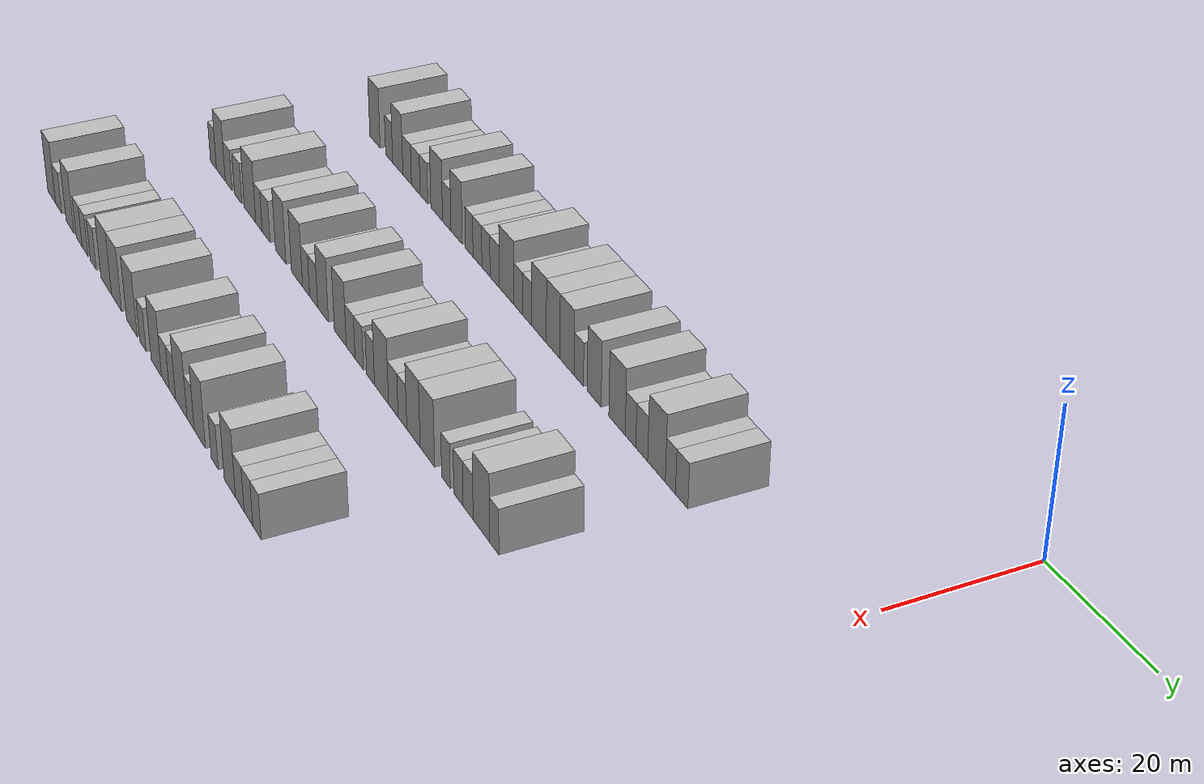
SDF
<sdf version="1.6">
 <world name="default">
  <model name="building_64">
   <static>1</static>
   <pose>25.0000 -115.7345 0 0.000000 0.000000 0.000000</pose>
   <link name="link">
    <pose>0 0 4.50 0 0 0</pose>
    <collision name="collision"><geometry><box><size>10.0000 3.7568 9.0000</size></box></geometry></collision>
    <visual name="visual">
     <cast_shadows>0</cast_shadows>
     <geometry><box><size>10.0000 3.7568 9.0000</size></box></geometry>
     <material>
      <script>
       <uri>model://HANNAS_wall/materials/scripts</uri>
       <uri>model://HANNAS_wall/materials/textures</uri>
       <name>vrc/HANNAS_wall</name>
      </script>
     </material>
    </visual>
   </link>
  </model>
  <model name="building_65">
   <static>1</static>
   <pose>25.0000 -110.6078 0 0.000000 0.000000 0.000000</pose>
   <link name="link">
    <pose>0 0 3.00 0 0 0</pose>
    <collision name="collision"><geometry><box><size>10.0000 2.4966 6.0000</size></box></geometry></collision>
    <visual name="visual">
     <cast_shadows>0</cast_shadows>
     <geometry><box><size>10.0000 2.4966 6.0000</size></box></geometry>
     <material>
      <script>
       <uri>model://HANNAS_wall/materials/scripts</uri>
       <uri>model://HANNAS_wall/materials/textures</uri>
       <name>vrc/HANNAS_wall</name>
      </script>
     </material>
    </visual>
   </link>
  </model>
  <model name="building_66">
   <static>1</static>
   <pose>25.0000 -107.5567 0 0.000000 0.000000 0.000000</pose>
   <link name="link">
    <pose>0 0 4.50 0 0 0</pose>
    <collision name="collision"><geometry><box><size>10.0000 3.6055 9.0000</size></box></geometry></collision>
    <visual name="visual">
     <cast_shadows>0</cast_shadows>
     <geometry><box><size>10.0000 3.6055 9.0000</size></box></geometry>
     <material>
      <script>
       <uri>model://HANNAS_wall/materials/scripts</uri>
       <uri>model://HANNAS_wall/materials/textures</uri>
       <name>vrc/HANNAS_wall</name>
      </script>
     </material>
    </visual>
   </link>
  </model>
  <model name="building_67">
   <static>1</static>
   <pose>25.0000 -104.2586 0 0.000000 0.000000 0.000000</pose>
   <link name="link">
    <pose>0 0 3.00 0 0 0</pose>
    <collision name="collision"><geometry><box><size>10.0000 2.9907 6.0000</size></box></geometry></collision>
    <visual name="visual">
     <cast_shadows>0</cast_shadows>
     <geometry><box><size>10.0000 2.9907 6.0000</size></box></geometry>
     <material>
      <script>
       <uri>model://HANNAS_wall/materials/scripts</uri>
       <uri>model://HANNAS_wall/materials/textures</uri>
       <name>vrc/HANNAS_wall</name>
      </script>
     </material>
    </visual>
   </link>
  </model>
  <model name="building_68">
   <static>1</static>
   <pose>25.0000 -101.2696 0 0.000000 0.000000 0.000000</pose>
   <link name="link">
    <pose>0 0 3.00 0 0 0</pose>
    <collision name="collision"><geometry><box><size>10.0000 2.9873 6.0000</size></box></geometry></collision>
    <visual name="visual">
     <cast_shadows>0</cast_shadows>
     <geometry><box><size>10.0000 2.9873 6.0000</size></box></geometry>
     <material>
      <script>
       <uri>model://HANNAS_wall/materials/scripts</uri>
       <uri>model://HANNAS_wall/materials/textures</uri>
       <name>vrc/HANNAS_wall</name>
      </script>
     </material>
    </visual>
   </link>
  </model>
  <model name="building_69">
   <static>1</static>
   <pose>25.0000 -98.4707 0 0.000000 0.000000 0.000000</pose>
   <link name="link">
    <pose>0 0 3.00 0 0 0</pose>
    <collision name="collision"><geometry><box><size>10.0000 2.6107 6.0000</size></box></geometry></collision>
    <visual name="visual">
     <cast_shadows>0</cast_shadows>
     <geometry><box><size>10.0000 2.6107 6.0000</size></box></geometry>
     <material>
      <script>
       <uri>model://HANNAS_wall/materials/scripts</uri>
       <uri>model://HANNAS_wall/materials/textures</uri>
       <name>vrc/HANNAS_wall</name>
      </script>
     </material>
    </visual>
   </link>
  </model>
  <model name="building_70">
   <static>1</static>
   <pose>25.0000 -94.2131 0 0.000000 0.000000 0.000000</pose>
   <link name="link">
    <pose>0 0 4.50 0 0 0</pose>
    <collision name="collision"><geometry><box><size>10.0000 3.9044 9.0000</size></box></geometry></collision>
    <visual name="visual">
     <cast_shadows>0</cast_shadows>
     <geometry><box><size>10.0000 3.9044 9.0000</size></box></geometry>
     <material>
      <script>
       <uri>model://HANNAS_wall/materials/scripts</uri>
       <uri>model://HANNAS_wall/materials/textures</uri>
       <name>vrc/HANNAS_wall</name>
      </script>
     </material>
    </visual>
   </link>
  </model>
  <model name="building_71">
   <static>1</static>
   <pose>25.0000 -90.8776 0 0.000000 0.000000 0.000000</pose>
   <link name="link">
    <pose>0 0 3.00 0 0 0</pose>
    <collision name="collision"><geometry><box><size>10.0000 2.7666 6.0000</size></box></geometry></collision>
    <visual name="visual">
     <cast_shadows>0</cast_shadows>
     <geometry><box><size>10.0000 2.7666 6.0000</size></box></geometry>
     <material>
      <script>
       <uri>model://HANNAS_wall/materials/scripts</uri>
       <uri>model://HANNAS_wall/materials/textures</uri>
       <name>vrc/HANNAS_wall</name>
      </script>
     </material>
    </visual>
   </link>
  </model>
  <model name="building_72">
   <static>1</static>
   <pose>25.0000 -87.6780 0 0.000000 0.000000 0.000000</pose>
   <link name="link">
    <pose>0 0 4.50 0 0 0</pose>
    <collision name="collision"><geometry><box><size>10.0000 3.6326 9.0000</size></box></geometry></collision>
    <visual name="visual">
     <cast_shadows>0</cast_shadows>
     <geometry><box><size>10.0000 3.6326 9.0000</size></box></geometry>
     <material>
      <script>
       <uri>model://HANNAS_wall/materials/scripts</uri>
       <uri>model://HANNAS_wall/materials/textures</uri>
       <name>vrc/HANNAS_wall</name>
      </script>
     </material>
    </visual>
   </link>
  </model>
  <model name="building_73">
   <static>1</static>
   <pose>25.0000 -83.6465 0 0.000000 0.000000 0.000000</pose>
   <link name="link">
    <pose>0 0 3.00 0 0 0</pose>
    <collision name="collision"><geometry><box><size>10.0000 2.4304 6.0000</size></box></geometry></collision>
    <visual name="visual">
     <cast_shadows>0</cast_shadows>
     <geometry><box><size>10.0000 2.4304 6.0000</size></box></geometry>
     <material>
      <script>
       <uri>model://HANNAS_wall/materials/scripts</uri>
       <uri>model://HANNAS_wall/materials/textures</uri>
       <name>vrc/HANNAS_wall</name>
      </script>
     </material>
    </visual>
   </link>
  </model>
  <model name="building_74">
   <static>1</static>
   <pose>25.0000 -81.0447 0 0.000000 0.000000 0.000000</pose>
   <link name="link">
    <pose>0 0 3.00 0 0 0</pose>
    <collision name="collision"><geometry><box><size>10.0000 2.7733 6.0000</size></box></geometry></collision>
    <visual name="visual">
     <cast_shadows>0</cast_shadows>
     <geometry><box><size>10.0000 2.7733 6.0000</size></box></geometry>
     <material>
      <script>
       <uri>model://HANNAS_wall/materials/scripts</uri>
       <uri>model://HANNAS_wall/materials/textures</uri>
       <name>vrc/HANNAS_wall</name>
      </script>
     </material>
    </visual>
   </link>
  </model>
  <model name="building_75">
   <static>1</static>
   <pose>25.0000 -78.3989 0 0.000000 0.000000 0.000000</pose>
   <link name="link">
    <pose>0 0 3.00 0 0 0</pose>
    <collision name="collision"><geometry><box><size>10.0000 2.5182 6.0000</size></box></geometry></collision>
    <visual name="visual">
     <cast_shadows>0</cast_shadows>
     <geometry><box><size>10.0000 2.5182 6.0000</size></box></geometry>
     <material>
      <script>
       <uri>model://HANNAS_wall/materials/scripts</uri>
       <uri>model://HANNAS_wall/materials/textures</uri>
       <name>vrc/HANNAS_wall</name>
      </script>
     </material>
    </visual>
   </link>
  </model>
  <model name="building_76">
   <static>1</static>
   <pose>25.0000 -75.7342 0 0.000000 0.000000 0.000000</pose>
   <link name="link">
    <pose>0 0 3.00 0 0 0</pose>
    <collision name="collision"><geometry><box><size>10.0000 2.8111 6.0000</size></box></geometry></collision>
    <visual name="visual">
     <cast_shadows>0</cast_shadows>
     <geometry><box><size>10.0000 2.8111 6.0000</size></box></geometry>
     <material>
      <script>
       <uri>model://HANNAS_wall/materials/scripts</uri>
       <uri>model://HANNAS_wall/materials/textures</uri>
       <name>vrc/HANNAS_wall</name>
      </script>
     </material>
    </visual>
   </link>
  </model>
  <model name="building_77">
   <static>1</static>
   <pose>25.0000 -72.1045 0 0.000000 0.000000 0.000000</pose>
   <link name="link">
    <pose>0 0 4.50 0 0 0</pose>
    <collision name="collision"><geometry><box><size>10.0000 4.4483 9.0000</size></box></geometry></collision>
    <visual name="visual">
     <cast_shadows>0</cast_shadows>
     <geometry><box><size>10.0000 4.4483 9.0000</size></box></geometry>
     <material>
      <script>
       <uri>model://HANNAS_wall/materials/scripts</uri>
       <uri>model://HANNAS_wall/materials/textures</uri>
       <name>vrc/HANNAS_wall</name>
      </script>
     </material>
    </visual>
   </link>
  </model>
  <model name="building_78">
   <static>1</static>
   <pose>25.0000 -68.6612 0 0.000000 0.000000 0.000000</pose>
   <link name="link">
    <pose>0 0 3.00 0 0 0</pose>
    <collision name="collision"><geometry><box><size>10.0000 2.4383 6.0000</size></box></geometry></collision>
    <visual name="visual">
     <cast_shadows>0</cast_shadows>
     <geometry><box><size>10.0000 2.4383 6.0000</size></box></geometry>
     <material>
      <script>
       <uri>model://HANNAS_wall/materials/scripts</uri>
       <uri>model://HANNAS_wall/materials/textures</uri>
       <name>vrc/HANNAS_wall</name>
      </script>
     </material>
    </visual>
   </link>
  </model>
  <model name="building_79">
   <static>1</static>
   <pose>25.0000 -66.0479 0 0.000000 0.000000 0.000000</pose>
   <link name="link">
    <pose>0 0 3.00 0 0 0</pose>
    <collision name="collision"><geometry><box><size>10.0000 2.7883 6.0000</size></box></geometry></collision>
    <visual name="visual">
     <cast_shadows>0</cast_shadows>
     <geometry><box><size>10.0000 2.7883 6.0000</size></box></geometry>
     <material>
      <script>
       <uri>model://HANNAS_wall/materials/scripts</uri>
       <uri>model://HANNAS_wall/materials/textures</uri>
       <name>vrc/HANNAS_wall</name>
      </script>
     </material>
    </visual>
   </link>
  </model>
  <model name="building_80">
   <static>1</static>
   <pose>25.0000 -62.5770 0 0.000000 0.000000 0.000000</pose>
   <link name="link">
    <pose>0 0 4.50 0 0 0</pose>
    <collision name="collision"><geometry><box><size>10.0000 4.1534 9.0000</size></box></geometry></collision>
    <visual name="visual">
     <cast_shadows>0</cast_shadows>
     <geometry><box><size>10.0000 4.1534 9.0000</size></box></geometry>
     <material>
      <script>
       <uri>model://HANNAS_wall/materials/scripts</uri>
       <uri>model://HANNAS_wall/materials/textures</uri>
       <name>vrc/HANNAS_wall</name>
      </script>
     </material>
    </visual>
   </link>
  </model>
  <model name="building_81">
   <static>1</static>
   <pose>25.0000 -58.6027 0 0.000000 0.000000 0.000000</pose>
   <link name="link">
    <pose>0 0 4.50 0 0 0</pose>
    <collision name="collision"><geometry><box><size>10.0000 3.7952 9.0000</size></box></geometry></collision>
    <visual name="visual">
     <cast_shadows>0</cast_shadows>
     <geometry><box><size>10.0000 3.7952 9.0000</size></box></geometry>
     <material>
      <script>
       <uri>model://HANNAS_wall/materials/scripts</uri>
       <uri>model://HANNAS_wall/materials/textures</uri>
       <name>vrc/HANNAS_wall</name>
      </script>
     </material>
    </visual>
   </link>
  </model>
  <model name="building_82">
   <static>1</static>
   <pose>25.0000 -54.7488 0 0.000000 0.000000 0.000000</pose>
   <link name="link">
    <pose>0 0 4.50 0 0 0</pose>
    <collision name="collision"><geometry><box><size>10.0000 3.9125 9.0000</size></box></geometry></collision>
    <visual name="visual">
     <cast_shadows>0</cast_shadows>
     <geometry><box><size>10.0000 3.9125 9.0000</size></box></geometry>
     <material>
      <script>
       <uri>model://HANNAS_wall/materials/scripts</uri>
       <uri>model://HANNAS_wall/materials/textures</uri>
       <name>vrc/HANNAS_wall</name>
      </script>
     </material>
    </visual>
   </link>
  </model>
  <model name="building_83">
   <static>1</static>
   <pose>25.0000 -51.5227 0 0.000000 0.000000 0.000000</pose>
   <link name="link">
    <pose>0 0 3.00 0 0 0</pose>
    <collision name="collision"><geometry><box><size>10.0000 2.5398 6.0000</size></box></geometry></collision>
    <visual name="visual">
     <cast_shadows>0</cast_shadows>
     <geometry><box><size>10.0000 2.5398 6.0000</size></box></geometry>
     <material>
      <script>
       <uri>model://HANNAS_wall/materials/scripts</uri>
       <uri>model://HANNAS_wall/materials/textures</uri>
       <name>vrc/HANNAS_wall</name>
      </script>
     </material>
    </visual>
   </link>
  </model>
  <model name="building_84">
   <static>1</static>
   <pose>25.0000 -47.3939 0 0.000000 0.000000 0.000000</pose>
   <link name="link">
    <pose>0 0 4.50 0 0 0</pose>
    <collision name="collision"><geometry><box><size>10.0000 3.7178 9.0000</size></box></geometry></collision>
    <visual name="visual">
     <cast_shadows>0</cast_shadows>
     <geometry><box><size>10.0000 3.7178 9.0000</size></box></geometry>
     <material>
      <script>
       <uri>model://HANNAS_wall/materials/scripts</uri>
       <uri>model://HANNAS_wall/materials/textures</uri>
       <name>vrc/HANNAS_wall</name>
      </script>
     </material>
    </visual>
   </link>
  </model>
  <model name="building_85">
   <static>1</static>
   <pose>25.0000 -41.4203 0 0.000000 0.000000 0.000000</pose>
   <link name="link">
    <pose>0 0 4.50 0 0 0</pose>
    <collision name="collision"><geometry><box><size>10.0000 4.2293 9.0000</size></box></geometry></collision>
    <visual name="visual">
     <cast_shadows>0</cast_shadows>
     <geometry><box><size>10.0000 4.2293 9.0000</size></box></geometry>
     <material>
      <script>
       <uri>model://HANNAS_wall/materials/scripts</uri>
       <uri>model://HANNAS_wall/materials/textures</uri>
       <name>vrc/HANNAS_wall</name>
      </script>
     </material>
    </visual>
   </link>
  </model>
  <model name="building_86">
   <static>1</static>
   <pose>25.0000 -37.9679 0 0.000000 0.000000 0.000000</pose>
   <link name="link">
    <pose>0 0 3.00 0 0 0</pose>
    <collision name="collision"><geometry><box><size>10.0000 2.6756 6.0000</size></box></geometry></collision>
    <visual name="visual">
     <cast_shadows>0</cast_shadows>
     <geometry><box><size>10.0000 2.6756 6.0000</size></box></geometry>
     <material>
      <script>
       <uri>model://HANNAS_wall/materials/scripts</uri>
       <uri>model://HANNAS_wall/materials/textures</uri>
       <name>vrc/HANNAS_wall</name>
      </script>
     </material>
    </visual>
   </link>
  </model>
  <model name="building_87">
   <static>1</static>
   <pose>25.0000 -35.1487 0 0.000000 0.000000 0.000000</pose>
   <link name="link">
    <pose>0 0 3.00 0 0 0</pose>
    <collision name="collision"><geometry><box><size>10.0000 2.9629 6.0000</size></box></geometry></collision>
    <visual name="visual">
     <cast_shadows>0</cast_shadows>
     <geometry><box><size>10.0000 2.9629 6.0000</size></box></geometry>
     <material>
      <script>
       <uri>model://HANNAS_wall/materials/scripts</uri>
       <uri>model://HANNAS_wall/materials/textures</uri>
       <name>vrc/HANNAS_wall</name>
      </script>
     </material>
    </visual>
   </link>
  </model>
  <model name="building_88">
   <static>1</static>
   <pose>25.0000 -31.5124 0 0.000000 0.000000 0.000000</pose>
   <link name="link">
    <pose>0 0 4.50 0 0 0</pose>
    <collision name="collision"><geometry><box><size>10.0000 4.3096 9.0000</size></box></geometry></collision>
    <visual name="visual">
     <cast_shadows>0</cast_shadows>
     <geometry><box><size>10.0000 4.3096 9.0000</size></box></geometry>
     <material>
      <script>
       <uri>model://HANNAS_wall/materials/scripts</uri>
       <uri>model://HANNAS_wall/materials/textures</uri>
       <name>vrc/HANNAS_wall</name>
      </script>
     </material>
    </visual>
   </link>
  </model>
  <model name="building_89">
   <static>1</static>
   <pose>25.0000 -28.1368 0 0.000000 0.000000 0.000000</pose>
   <link name="link">
    <pose>0 0 3.00 0 0 0</pose>
    <collision name="collision"><geometry><box><size>10.0000 2.4417 6.0000</size></box></geometry></collision>
    <visual name="visual">
     <cast_shadows>0</cast_shadows>
     <geometry><box><size>10.0000 2.4417 6.0000</size></box></geometry>
     <material>
      <script>
       <uri>model://HANNAS_wall/materials/scripts</uri>
       <uri>model://HANNAS_wall/materials/textures</uri>
       <name>vrc/HANNAS_wall</name>
      </script>
     </material>
    </visual>
   </link>
  </model>
  <model name="building_90">
   <static>1</static>
   <pose>25.0000 -25.4453 0 0.000000 0.000000 0.000000</pose>
   <link name="link">
    <pose>0 0 3.00 0 0 0</pose>
    <collision name="collision"><geometry><box><size>10.0000 2.9414 6.0000</size></box></geometry></collision>
    <visual name="visual">
     <cast_shadows>0</cast_shadows>
     <geometry><box><size>10.0000 2.9414 6.0000</size></box></geometry>
     <material>
      <script>
       <uri>model://HANNAS_wall/materials/scripts</uri>
       <uri>model://HANNAS_wall/materials/textures</uri>
       <name>vrc/HANNAS_wall</name>
      </script>
     </material>
    </visual>
   </link>
  </model>
  <model name="building_266">
   <static>1</static>
   <pose>47.0000 -118.7069 0 0.000000 0.000000 0.000000</pose>
   <link name="link">
    <pose>0 0 3.00 0 0 0</pose>
    <collision name="collision"><geometry><box><size>10.0000 2.4562 6.0000</size></box></geometry></collision>
    <visual name="visual">
     <cast_shadows>0</cast_shadows>
     <geometry><box><size>10.0000 2.4562 6.0000</size></box></geometry>
     <material>
      <script>
       <uri>model://HANNAS_wall/materials/scripts</uri>
       <uri>model://HANNAS_wall/materials/textures</uri>
       <name>vrc/HANNAS_wall</name>
      </script>
     </material>
    </visual>
   </link>
  </model>
  <model name="building_267">
   <static>1</static>
   <pose>47.0000 -115.6715 0 0.000000 0.000000 0.000000</pose>
   <link name="link">
    <pose>0 0 4.50 0 0 0</pose>
    <collision name="collision"><geometry><box><size>10.0000 3.6147 9.0000</size></box></geometry></collision>
    <visual name="visual">
     <cast_shadows>0</cast_shadows>
     <geometry><box><size>10.0000 3.6147 9.0000</size></box></geometry>
     <material>
      <script>
       <uri>model://HANNAS_wall/materials/scripts</uri>
       <uri>model://HANNAS_wall/materials/textures</uri>
       <name>vrc/HANNAS_wall</name>
      </script>
     </material>
    </visual>
   </link>
  </model>
  <model name="building_268">
   <static>1</static>
   <pose>47.0000 -112.5196 0 0.000000 0.000000 0.000000</pose>
   <link name="link">
    <pose>0 0 3.00 0 0 0</pose>
    <collision name="collision"><geometry><box><size>10.0000 2.6890 6.0000</size></box></geometry></collision>
    <visual name="visual">
     <cast_shadows>0</cast_shadows>
     <geometry><box><size>10.0000 2.6890 6.0000</size></box></geometry>
     <material>
      <script>
       <uri>model://HANNAS_wall/materials/scripts</uri>
       <uri>model://HANNAS_wall/materials/textures</uri>
       <name>vrc/HANNAS_wall</name>
      </script>
     </material>
    </visual>
   </link>
  </model>
  <model name="building_269">
   <static>1</static>
   <pose>47.0000 -108.7209 0 0.000000 0.000000 0.000000</pose>
   <link name="link">
    <pose>0 0 3.00 0 0 0</pose>
    <collision name="collision"><geometry><box><size>10.0000 2.9084 6.0000</size></box></geometry></collision>
    <visual name="visual">
     <cast_shadows>0</cast_shadows>
     <geometry><box><size>10.0000 2.9084 6.0000</size></box></geometry>
     <material>
      <script>
       <uri>model://HANNAS_wall/materials/scripts</uri>
       <uri>model://HANNAS_wall/materials/textures</uri>
       <name>vrc/HANNAS_wall</name>
      </script>
     </material>
    </visual>
   </link>
  </model>
  <model name="building_270">
   <static>1</static>
   <pose>47.0000 -104.0723 0 0.000000 0.000000 0.000000</pose>
   <link name="link">
    <pose>0 0 4.50 0 0 0</pose>
    <collision name="collision"><geometry><box><size>10.0000 4.3889 9.0000</size></box></geometry></collision>
    <visual name="visual">
     <cast_shadows>0</cast_shadows>
     <geometry><box><size>10.0000 4.3889 9.0000</size></box></geometry>
     <material>
      <script>
       <uri>model://HANNAS_wall/materials/scripts</uri>
       <uri>model://HANNAS_wall/materials/textures</uri>
       <name>vrc/HANNAS_wall</name>
      </script>
     </material>
    </visual>
   </link>
  </model>
  <model name="building_271">
   <static>1</static>
   <pose>47.0000 -100.6327 0 0.000000 0.000000 0.000000</pose>
   <link name="link">
    <pose>0 0 3.00 0 0 0</pose>
    <collision name="collision"><geometry><box><size>10.0000 2.4904 6.0000</size></box></geometry></collision>
    <visual name="visual">
     <cast_shadows>0</cast_shadows>
     <geometry><box><size>10.0000 2.4904 6.0000</size></box></geometry>
     <material>
      <script>
       <uri>model://HANNAS_wall/materials/scripts</uri>
       <uri>model://HANNAS_wall/materials/textures</uri>
       <name>vrc/HANNAS_wall</name>
      </script>
     </material>
    </visual>
   </link>
  </model>
  <model name="building_272">
   <static>1</static>
   <pose>47.0000 -97.9190 0 0.000000 0.000000 0.000000</pose>
   <link name="link">
    <pose>0 0 3.00 0 0 0</pose>
    <collision name="collision"><geometry><box><size>10.0000 2.9370 6.0000</size></box></geometry></collision>
    <visual name="visual">
     <cast_shadows>0</cast_shadows>
     <geometry><box><size>10.0000 2.9370 6.0000</size></box></geometry>
     <material>
      <script>
       <uri>model://HANNAS_wall/materials/scripts</uri>
       <uri>model://HANNAS_wall/materials/textures</uri>
       <name>vrc/HANNAS_wall</name>
      </script>
     </material>
    </visual>
   </link>
  </model>
  <model name="building_273">
   <static>1</static>
   <pose>47.0000 -92.5173 0 0.000000 0.000000 0.000000</pose>
   <link name="link">
    <pose>0 0 4.50 0 0 0</pose>
    <collision name="collision"><geometry><box><size>10.0000 3.8663 9.0000</size></box></geometry></collision>
    <visual name="visual">
     <cast_shadows>0</cast_shadows>
     <geometry><box><size>10.0000 3.8663 9.0000</size></box></geometry>
     <material>
      <script>
       <uri>model://HANNAS_wall/materials/scripts</uri>
       <uri>model://HANNAS_wall/materials/textures</uri>
       <name>vrc/HANNAS_wall</name>
      </script>
     </material>
    </visual>
   </link>
  </model>
  <model name="building_274">
   <static>1</static>
   <pose>47.0000 -86.6081 0 0.000000 0.000000 0.000000</pose>
   <link name="link">
    <pose>0 0 4.50 0 0 0</pose>
    <collision name="collision"><geometry><box><size>10.0000 3.9521 9.0000</size></box></geometry></collision>
    <visual name="visual">
     <cast_shadows>0</cast_shadows>
     <geometry><box><size>10.0000 3.9521 9.0000</size></box></geometry>
     <material>
      <script>
       <uri>model://HANNAS_wall/materials/scripts</uri>
       <uri>model://HANNAS_wall/materials/textures</uri>
       <name>vrc/HANNAS_wall</name>
      </script>
     </material>
    </visual>
   </link>
  </model>
  <model name="building_275">
   <static>1</static>
   <pose>47.0000 -83.3900 0 0.000000 0.000000 0.000000</pose>
   <link name="link">
    <pose>0 0 3.00 0 0 0</pose>
    <collision name="collision"><geometry><box><size>10.0000 2.4842 6.0000</size></box></geometry></collision>
    <visual name="visual">
     <cast_shadows>0</cast_shadows>
     <geometry><box><size>10.0000 2.4842 6.0000</size></box></geometry>
     <material>
      <script>
       <uri>model://HANNAS_wall/materials/scripts</uri>
       <uri>model://HANNAS_wall/materials/textures</uri>
       <name>vrc/HANNAS_wall</name>
      </script>
     </material>
    </visual>
   </link>
  </model>
  <model name="building_276">
   <static>1</static>
   <pose>47.0000 -80.7533 0 0.000000 0.000000 0.000000</pose>
   <link name="link">
    <pose>0 0 3.00 0 0 0</pose>
    <collision name="collision"><geometry><box><size>10.0000 2.7892 6.0000</size></box></geometry></collision>
    <visual name="visual">
     <cast_shadows>0</cast_shadows>
     <geometry><box><size>10.0000 2.7892 6.0000</size></box></geometry>
     <material>
      <script>
       <uri>model://HANNAS_wall/materials/scripts</uri>
       <uri>model://HANNAS_wall/materials/textures</uri>
       <name>vrc/HANNAS_wall</name>
      </script>
     </material>
    </visual>
   </link>
  </model>
  <model name="building_277">
   <static>1</static>
   <pose>47.0000 -77.5173 0 0.000000 0.000000 0.000000</pose>
   <link name="link">
    <pose>0 0 4.50 0 0 0</pose>
    <collision name="collision"><geometry><box><size>10.0000 3.6828 9.0000</size></box></geometry></collision>
    <visual name="visual">
     <cast_shadows>0</cast_shadows>
     <geometry><box><size>10.0000 3.6828 9.0000</size></box></geometry>
     <material>
      <script>
       <uri>model://HANNAS_wall/materials/scripts</uri>
       <uri>model://HANNAS_wall/materials/textures</uri>
       <name>vrc/HANNAS_wall</name>
      </script>
     </material>
    </visual>
   </link>
  </model>
  <model name="building_278">
   <static>1</static>
   <pose>47.0000 -71.6938 0 0.000000 0.000000 0.000000</pose>
   <link name="link">
    <pose>0 0 4.50 0 0 0</pose>
    <collision name="collision"><geometry><box><size>10.0000 3.9641 9.0000</size></box></geometry></collision>
    <visual name="visual">
     <cast_shadows>0</cast_shadows>
     <geometry><box><size>10.0000 3.9641 9.0000</size></box></geometry>
     <material>
      <script>
       <uri>model://HANNAS_wall/materials/scripts</uri>
       <uri>model://HANNAS_wall/materials/textures</uri>
       <name>vrc/HANNAS_wall</name>
      </script>
     </material>
    </visual>
   </link>
  </model>
  <model name="building_279">
   <static>1</static>
   <pose>47.0000 -68.2783 0 0.000000 0.000000 0.000000</pose>
   <link name="link">
    <pose>0 0 3.00 0 0 0</pose>
    <collision name="collision"><geometry><box><size>10.0000 2.8669 6.0000</size></box></geometry></collision>
    <visual name="visual">
     <cast_shadows>0</cast_shadows>
     <geometry><box><size>10.0000 2.8669 6.0000</size></box></geometry>
     <material>
      <script>
       <uri>model://HANNAS_wall/materials/scripts</uri>
       <uri>model://HANNAS_wall/materials/textures</uri>
       <name>vrc/HANNAS_wall</name>
      </script>
     </material>
    </visual>
   </link>
  </model>
  <model name="building_280">
   <static>1</static>
   <pose>47.0000 -65.4912 0 0.000000 0.000000 0.000000</pose>
   <link name="link">
    <pose>0 0 3.00 0 0 0</pose>
    <collision name="collision"><geometry><box><size>10.0000 2.7071 6.0000</size></box></geometry></collision>
    <visual name="visual">
     <cast_shadows>0</cast_shadows>
     <geometry><box><size>10.0000 2.7071 6.0000</size></box></geometry>
     <material>
      <script>
       <uri>model://HANNAS_wall/materials/scripts</uri>
       <uri>model://HANNAS_wall/materials/textures</uri>
       <name>vrc/HANNAS_wall</name>
      </script>
     </material>
    </visual>
   </link>
  </model>
  <model name="building_281">
   <static>1</static>
   <pose>47.0000 -61.8889 0 0.000000 0.000000 0.000000</pose>
   <link name="link">
    <pose>0 0 3.00 0 0 0</pose>
    <collision name="collision"><geometry><box><size>10.0000 2.4976 6.0000</size></box></geometry></collision>
    <visual name="visual">
     <cast_shadows>0</cast_shadows>
     <geometry><box><size>10.0000 2.4976 6.0000</size></box></geometry>
     <material>
      <script>
       <uri>model://HANNAS_wall/materials/scripts</uri>
       <uri>model://HANNAS_wall/materials/textures</uri>
       <name>vrc/HANNAS_wall</name>
      </script>
     </material>
    </visual>
   </link>
  </model>
  <model name="building_282">
   <static>1</static>
   <pose>47.0000 -58.4515 0 0.000000 0.000000 0.000000</pose>
   <link name="link">
    <pose>0 0 4.50 0 0 0</pose>
    <collision name="collision"><geometry><box><size>10.0000 4.3770 9.0000</size></box></geometry></collision>
    <visual name="visual">
     <cast_shadows>0</cast_shadows>
     <geometry><box><size>10.0000 4.3770 9.0000</size></box></geometry>
     <material>
      <script>
       <uri>model://HANNAS_wall/materials/scripts</uri>
       <uri>model://HANNAS_wall/materials/textures</uri>
       <name>vrc/HANNAS_wall</name>
      </script>
     </material>
    </visual>
   </link>
  </model>
  <model name="building_283">
   <static>1</static>
   <pose>47.0000 -54.8127 0 0.000000 0.000000 0.000000</pose>
   <link name="link">
    <pose>0 0 3.00 0 0 0</pose>
    <collision name="collision"><geometry><box><size>10.0000 2.9007 6.0000</size></box></geometry></collision>
    <visual name="visual">
     <cast_shadows>0</cast_shadows>
     <geometry><box><size>10.0000 2.9007 6.0000</size></box></geometry>
     <material>
      <script>
       <uri>model://HANNAS_wall/materials/scripts</uri>
       <uri>model://HANNAS_wall/materials/textures</uri>
       <name>vrc/HANNAS_wall</name>
      </script>
     </material>
    </visual>
   </link>
  </model>
  <model name="building_284">
   <static>1</static>
   <pose>47.0000 -52.0493 0 0.000000 0.000000 0.000000</pose>
   <link name="link">
    <pose>0 0 3.00 0 0 0</pose>
    <collision name="collision"><geometry><box><size>10.0000 2.6260 6.0000</size></box></geometry></collision>
    <visual name="visual">
     <cast_shadows>0</cast_shadows>
     <geometry><box><size>10.0000 2.6260 6.0000</size></box></geometry>
     <material>
      <script>
       <uri>model://HANNAS_wall/materials/scripts</uri>
       <uri>model://HANNAS_wall/materials/textures</uri>
       <name>vrc/HANNAS_wall</name>
      </script>
     </material>
    </visual>
   </link>
  </model>
  <model name="building_285">
   <static>1</static>
   <pose>47.0000 -48.7636 0 0.000000 0.000000 0.000000</pose>
   <link name="link">
    <pose>0 0 4.50 0 0 0</pose>
    <collision name="collision"><geometry><box><size>10.0000 3.9453 9.0000</size></box></geometry></collision>
    <visual name="visual">
     <cast_shadows>0</cast_shadows>
     <geometry><box><size>10.0000 3.9453 9.0000</size></box></geometry>
     <material>
      <script>
       <uri>model://HANNAS_wall/materials/scripts</uri>
       <uri>model://HANNAS_wall/materials/textures</uri>
       <name>vrc/HANNAS_wall</name>
      </script>
     </material>
    </visual>
   </link>
  </model>
  <model name="building_286">
   <static>1</static>
   <pose>47.0000 -44.6874 0 0.000000 0.000000 0.000000</pose>
   <link name="link">
    <pose>0 0 4.50 0 0 0</pose>
    <collision name="collision"><geometry><box><size>10.0000 4.2071 9.0000</size></box></geometry></collision>
    <visual name="visual">
     <cast_shadows>0</cast_shadows>
     <geometry><box><size>10.0000 4.2071 9.0000</size></box></geometry>
     <material>
      <script>
       <uri>model://HANNAS_wall/materials/scripts</uri>
       <uri>model://HANNAS_wall/materials/textures</uri>
       <name>vrc/HANNAS_wall</name>
      </script>
     </material>
    </visual>
   </link>
  </model>
  <model name="building_287">
   <static>1</static>
   <pose>47.0000 -39.3764 0 0.000000 0.000000 0.000000</pose>
   <link name="link">
    <pose>0 0 3.00 0 0 0</pose>
    <collision name="collision"><geometry><box><size>10.0000 2.4149 6.0000</size></box></geometry></collision>
    <visual name="visual">
     <cast_shadows>0</cast_shadows>
     <geometry><box><size>10.0000 2.4149 6.0000</size></box></geometry>
     <material>
      <script>
       <uri>model://HANNAS_wall/materials/scripts</uri>
       <uri>model://HANNAS_wall/materials/textures</uri>
       <name>vrc/HANNAS_wall</name>
      </script>
     </material>
    </visual>
   </link>
  </model>
  <model name="building_288">
   <static>1</static>
   <pose>47.0000 -35.8899 0 0.000000 0.000000 0.000000</pose>
   <link name="link">
    <pose>0 0 3.00 0 0 0</pose>
    <collision name="collision"><geometry><box><size>10.0000 2.5582 6.0000</size></box></geometry></collision>
    <visual name="visual">
     <cast_shadows>0</cast_shadows>
     <geometry><box><size>10.0000 2.5582 6.0000</size></box></geometry>
     <material>
      <script>
       <uri>model://HANNAS_wall/materials/scripts</uri>
       <uri>model://HANNAS_wall/materials/textures</uri>
       <name>vrc/HANNAS_wall</name>
      </script>
     </material>
    </visual>
   </link>
  </model>
  <model name="building_289">
   <static>1</static>
   <pose>47.0000 -33.2452 0 0.000000 0.000000 0.000000</pose>
   <link name="link">
    <pose>0 0 3.00 0 0 0</pose>
    <collision name="collision"><geometry><box><size>10.0000 2.7311 6.0000</size></box></geometry></collision>
    <visual name="visual">
     <cast_shadows>0</cast_shadows>
     <geometry><box><size>10.0000 2.7311 6.0000</size></box></geometry>
     <material>
      <script>
       <uri>model://HANNAS_wall/materials/scripts</uri>
       <uri>model://HANNAS_wall/materials/textures</uri>
       <name>vrc/HANNAS_wall</name>
      </script>
     </material>
    </visual>
   </link>
  </model>
  <model name="building_290">
   <static>1</static>
   <pose>47.0000 -29.6646 0 0.000000 0.000000 0.000000</pose>
   <link name="link">
    <pose>0 0 4.50 0 0 0</pose>
    <collision name="collision"><geometry><box><size>10.0000 4.4301 9.0000</size></box></geometry></collision>
    <visual name="visual">
     <cast_shadows>0</cast_shadows>
     <geometry><box><size>10.0000 4.4301 9.0000</size></box></geometry>
     <material>
      <script>
       <uri>model://HANNAS_wall/materials/scripts</uri>
       <uri>model://HANNAS_wall/materials/textures</uri>
       <name>vrc/HANNAS_wall</name>
      </script>
     </material>
    </visual>
   </link>
  </model>
  <model name="building_291">
   <static>1</static>
   <pose>47.0000 -26.2458 0 0.000000 0.000000 0.000000</pose>
   <link name="link">
    <pose>0 0 3.00 0 0 0</pose>
    <collision name="collision"><geometry><box><size>10.0000 2.4075 6.0000</size></box></geometry></collision>
    <visual name="visual">
     <cast_shadows>0</cast_shadows>
     <geometry><box><size>10.0000 2.4075 6.0000</size></box></geometry>
     <material>
      <script>
       <uri>model://HANNAS_wall/materials/scripts</uri>
       <uri>model://HANNAS_wall/materials/textures</uri>
       <name>vrc/HANNAS_wall</name>
      </script>
     </material>
    </visual>
   </link>
  </model>
  <model name="building_458">
   <static>1</static>
   <pose>69.0000 -119.3303 0 0.000000 0.000000 0.000000</pose>
   <link name="link">
    <pose>0 0 4.50 0 0 0</pose>
    <collision name="collision"><geometry><box><size>10.0000 3.6953 9.0000</size></box></geometry></collision>
    <visual name="visual">
     <cast_shadows>0</cast_shadows>
     <geometry><box><size>10.0000 3.6953 9.0000</size></box></geometry>
     <material>
      <script>
       <uri>model://HANNAS_wall/materials/scripts</uri>
       <uri>model://HANNAS_wall/materials/textures</uri>
       <name>vrc/HANNAS_wall</name>
      </script>
     </material>
    </visual>
   </link>
  </model>
  <model name="building_459">
   <static>1</static>
   <pose>69.0000 -116.0435 0 0.000000 0.000000 0.000000</pose>
   <link name="link">
    <pose>0 0 3.00 0 0 0</pose>
    <collision name="collision"><geometry><box><size>10.0000 2.8782 6.0000</size></box></geometry></collision>
    <visual name="visual">
     <cast_shadows>0</cast_shadows>
     <geometry><box><size>10.0000 2.8782 6.0000</size></box></geometry>
     <material>
      <script>
       <uri>model://HANNAS_wall/materials/scripts</uri>
       <uri>model://HANNAS_wall/materials/textures</uri>
       <name>vrc/HANNAS_wall</name>
      </script>
     </material>
    </visual>
   </link>
  </model>
  <model name="building_460">
   <static>1</static>
   <pose>69.0000 -110.7990 0 0.000000 0.000000 0.000000</pose>
   <link name="link">
    <pose>0 0 4.50 0 0 0</pose>
    <collision name="collision"><geometry><box><size>10.0000 3.6109 9.0000</size></box></geometry></collision>
    <visual name="visual">
     <cast_shadows>0</cast_shadows>
     <geometry><box><size>10.0000 3.6109 9.0000</size></box></geometry>
     <material>
      <script>
       <uri>model://HANNAS_wall/materials/scripts</uri>
       <uri>model://HANNAS_wall/materials/textures</uri>
       <name>vrc/HANNAS_wall</name>
      </script>
     </material>
    </visual>
   </link>
  </model>
  <model name="building_461">
   <static>1</static>
   <pose>69.0000 -106.6581 0 0.000000 0.000000 0.000000</pose>
   <link name="link">
    <pose>0 0 3.00 0 0 0</pose>
    <collision name="collision"><geometry><box><size>10.0000 2.6709 6.0000</size></box></geometry></collision>
    <visual name="visual">
     <cast_shadows>0</cast_shadows>
     <geometry><box><size>10.0000 2.6709 6.0000</size></box></geometry>
     <material>
      <script>
       <uri>model://HANNAS_wall/materials/scripts</uri>
       <uri>model://HANNAS_wall/materials/textures</uri>
       <name>vrc/HANNAS_wall</name>
      </script>
     </material>
    </visual>
   </link>
  </model>
  <model name="building_462">
   <static>1</static>
   <pose>69.0000 -104.0213 0 0.000000 0.000000 0.000000</pose>
   <link name="link">
    <pose>0 0 3.00 0 0 0</pose>
    <collision name="collision"><geometry><box><size>10.0000 2.6027 6.0000</size></box></geometry></collision>
    <visual name="visual">
     <cast_shadows>0</cast_shadows>
     <geometry><box><size>10.0000 2.6027 6.0000</size></box></geometry>
     <material>
      <script>
       <uri>model://HANNAS_wall/materials/scripts</uri>
       <uri>model://HANNAS_wall/materials/textures</uri>
       <name>vrc/HANNAS_wall</name>
      </script>
     </material>
    </visual>
   </link>
  </model>
  <model name="building_463">
   <static>1</static>
   <pose>69.0000 -100.4387 0 0.000000 0.000000 0.000000</pose>
   <link name="link">
    <pose>0 0 3.00 0 0 0</pose>
    <collision name="collision"><geometry><box><size>10.0000 2.5624 6.0000</size></box></geometry></collision>
    <visual name="visual">
     <cast_shadows>0</cast_shadows>
     <geometry><box><size>10.0000 2.5624 6.0000</size></box></geometry>
     <material>
      <script>
       <uri>model://HANNAS_wall/materials/scripts</uri>
       <uri>model://HANNAS_wall/materials/textures</uri>
       <name>vrc/HANNAS_wall</name>
      </script>
     </material>
    </visual>
   </link>
  </model>
  <model name="building_464">
   <static>1</static>
   <pose>69.0000 -94.9107 0 0.000000 0.000000 0.000000</pose>
   <link name="link">
    <pose>0 0 4.50 0 0 0</pose>
    <collision name="collision"><geometry><box><size>10.0000 4.4937 9.0000</size></box></geometry></collision>
    <visual name="visual">
     <cast_shadows>0</cast_shadows>
     <geometry><box><size>10.0000 4.4937 9.0000</size></box></geometry>
     <material>
      <script>
       <uri>model://HANNAS_wall/materials/scripts</uri>
       <uri>model://HANNAS_wall/materials/textures</uri>
       <name>vrc/HANNAS_wall</name>
      </script>
     </material>
    </visual>
   </link>
  </model>
  <model name="building_465">
   <static>1</static>
   <pose>69.0000 -90.5588 0 0.000000 0.000000 0.000000</pose>
   <link name="link">
    <pose>0 0 4.50 0 0 0</pose>
    <collision name="collision"><geometry><box><size>10.0000 4.2100 9.0000</size></box></geometry></collision>
    <visual name="visual">
     <cast_shadows>0</cast_shadows>
     <geometry><box><size>10.0000 4.2100 9.0000</size></box></geometry>
     <material>
      <script>
       <uri>model://HANNAS_wall/materials/scripts</uri>
       <uri>model://HANNAS_wall/materials/textures</uri>
       <name>vrc/HANNAS_wall</name>
      </script>
     </material>
    </visual>
   </link>
  </model>
  <model name="building_466">
   <static>1</static>
   <pose>69.0000 -84.3004 0 0.000000 0.000000 0.000000</pose>
   <link name="link">
    <pose>0 0 4.50 0 0 0</pose>
    <collision name="collision"><geometry><box><size>10.0000 4.3067 9.0000</size></box></geometry></collision>
    <visual name="visual">
     <cast_shadows>0</cast_shadows>
     <geometry><box><size>10.0000 4.3067 9.0000</size></box></geometry>
     <material>
      <script>
       <uri>model://HANNAS_wall/materials/scripts</uri>
       <uri>model://HANNAS_wall/materials/textures</uri>
       <name>vrc/HANNAS_wall</name>
      </script>
     </material>
    </visual>
   </link>
  </model>
  <model name="building_467">
   <static>1</static>
   <pose>69.0000 -79.8926 0 0.000000 0.000000 0.000000</pose>
   <link name="link">
    <pose>0 0 3.00 0 0 0</pose>
    <collision name="collision"><geometry><box><size>10.0000 2.5090 6.0000</size></box></geometry></collision>
    <visual name="visual">
     <cast_shadows>0</cast_shadows>
     <geometry><box><size>10.0000 2.5090 6.0000</size></box></geometry>
     <material>
      <script>
       <uri>model://HANNAS_wall/materials/scripts</uri>
       <uri>model://HANNAS_wall/materials/textures</uri>
       <name>vrc/HANNAS_wall</name>
      </script>
     </material>
    </visual>
   </link>
  </model>
  <model name="building_468">
   <static>1</static>
   <pose>69.0000 -74.6547 0 0.000000 0.000000 0.000000</pose>
   <link name="link">
    <pose>0 0 4.50 0 0 0</pose>
    <collision name="collision"><geometry><box><size>10.0000 3.9670 9.0000</size></box></geometry></collision>
    <visual name="visual">
     <cast_shadows>0</cast_shadows>
     <geometry><box><size>10.0000 3.9670 9.0000</size></box></geometry>
     <material>
      <script>
       <uri>model://HANNAS_wall/materials/scripts</uri>
       <uri>model://HANNAS_wall/materials/textures</uri>
       <name>vrc/HANNAS_wall</name>
      </script>
     </material>
    </visual>
   </link>
  </model>
  <model name="building_469">
   <static>1</static>
   <pose>69.0000 -71.2406 0 0.000000 0.000000 0.000000</pose>
   <link name="link">
    <pose>0 0 3.00 0 0 0</pose>
    <collision name="collision"><geometry><box><size>10.0000 2.8612 6.0000</size></box></geometry></collision>
    <visual name="visual">
     <cast_shadows>0</cast_shadows>
     <geometry><box><size>10.0000 2.8612 6.0000</size></box></geometry>
     <material>
      <script>
       <uri>model://HANNAS_wall/materials/scripts</uri>
       <uri>model://HANNAS_wall/materials/textures</uri>
       <name>vrc/HANNAS_wall</name>
      </script>
     </material>
    </visual>
   </link>
  </model>
  <model name="building_470">
   <static>1</static>
   <pose>69.0000 -68.5914 0 0.000000 0.000000 0.000000</pose>
   <link name="link">
    <pose>0 0 3.00 0 0 0</pose>
    <collision name="collision"><geometry><box><size>10.0000 2.4372 6.0000</size></box></geometry></collision>
    <visual name="visual">
     <cast_shadows>0</cast_shadows>
     <geometry><box><size>10.0000 2.4372 6.0000</size></box></geometry>
     <material>
      <script>
       <uri>model://HANNAS_wall/materials/scripts</uri>
       <uri>model://HANNAS_wall/materials/textures</uri>
       <name>vrc/HANNAS_wall</name>
      </script>
     </material>
    </visual>
   </link>
  </model>
  <model name="building_471">
   <static>1</static>
   <pose>69.0000 -65.2761 0 0.000000 0.000000 0.000000</pose>
   <link name="link">
    <pose>0 0 4.50 0 0 0</pose>
    <collision name="collision"><geometry><box><size>10.0000 4.1934 9.0000</size></box></geometry></collision>
    <visual name="visual">
     <cast_shadows>0</cast_shadows>
     <geometry><box><size>10.0000 4.1934 9.0000</size></box></geometry>
     <material>
      <script>
       <uri>model://HANNAS_wall/materials/scripts</uri>
       <uri>model://HANNAS_wall/materials/textures</uri>
       <name>vrc/HANNAS_wall</name>
      </script>
     </material>
    </visual>
   </link>
  </model>
  <model name="building_472">
   <static>1</static>
   <pose>69.0000 -61.8948 0 0.000000 0.000000 0.000000</pose>
   <link name="link">
    <pose>0 0 3.00 0 0 0</pose>
    <collision name="collision"><geometry><box><size>10.0000 2.5692 6.0000</size></box></geometry></collision>
    <visual name="visual">
     <cast_shadows>0</cast_shadows>
     <geometry><box><size>10.0000 2.5692 6.0000</size></box></geometry>
     <material>
      <script>
       <uri>model://HANNAS_wall/materials/scripts</uri>
       <uri>model://HANNAS_wall/materials/textures</uri>
       <name>vrc/HANNAS_wall</name>
      </script>
     </material>
    </visual>
   </link>
  </model>
  <model name="building_473">
   <static>1</static>
   <pose>69.0000 -58.6294 0 0.000000 0.000000 0.000000</pose>
   <link name="link">
    <pose>0 0 4.50 0 0 0</pose>
    <collision name="collision"><geometry><box><size>10.0000 3.9614 9.0000</size></box></geometry></collision>
    <visual name="visual">
     <cast_shadows>0</cast_shadows>
     <geometry><box><size>10.0000 3.9614 9.0000</size></box></geometry>
     <material>
      <script>
       <uri>model://HANNAS_wall/materials/scripts</uri>
       <uri>model://HANNAS_wall/materials/textures</uri>
       <name>vrc/HANNAS_wall</name>
      </script>
     </material>
    </visual>
   </link>
  </model>
  <model name="building_474">
   <static>1</static>
   <pose>69.0000 -53.4081 0 0.000000 0.000000 0.000000</pose>
   <link name="link">
    <pose>0 0 3.00 0 0 0</pose>
    <collision name="collision"><geometry><box><size>10.0000 2.4812 6.0000</size></box></geometry></collision>
    <visual name="visual">
     <cast_shadows>0</cast_shadows>
     <geometry><box><size>10.0000 2.4812 6.0000</size></box></geometry>
     <material>
      <script>
       <uri>model://HANNAS_wall/materials/scripts</uri>
       <uri>model://HANNAS_wall/materials/textures</uri>
       <name>vrc/HANNAS_wall</name>
      </script>
     </material>
    </visual>
   </link>
  </model>
  <model name="building_475">
   <static>1</static>
   <pose>69.0000 -48.2926 0 0.000000 0.000000 0.000000</pose>
   <link name="link">
    <pose>0 0 4.50 0 0 0</pose>
    <collision name="collision"><geometry><box><size>10.0000 3.7498 9.0000</size></box></geometry></collision>
    <visual name="visual">
     <cast_shadows>0</cast_shadows>
     <geometry><box><size>10.0000 3.7498 9.0000</size></box></geometry>
     <material>
      <script>
       <uri>model://HANNAS_wall/materials/scripts</uri>
       <uri>model://HANNAS_wall/materials/textures</uri>
       <name>vrc/HANNAS_wall</name>
      </script>
     </material>
    </visual>
   </link>
  </model>
  <model name="building_476">
   <static>1</static>
   <pose>69.0000 -44.9910 0 0.000000 0.000000 0.000000</pose>
   <link name="link">
    <pose>0 0 3.00 0 0 0</pose>
    <collision name="collision"><geometry><box><size>10.0000 2.8534 6.0000</size></box></geometry></collision>
    <visual name="visual">
     <cast_shadows>0</cast_shadows>
     <geometry><box><size>10.0000 2.8534 6.0000</size></box></geometry>
     <material>
      <script>
       <uri>model://HANNAS_wall/materials/scripts</uri>
       <uri>model://HANNAS_wall/materials/textures</uri>
       <name>vrc/HANNAS_wall</name>
      </script>
     </material>
    </visual>
   </link>
  </model>
  <model name="building_477">
   <static>1</static>
   <pose>69.0000 -42.1576 0 0.000000 0.000000 0.000000</pose>
   <link name="link">
    <pose>0 0 3.00 0 0 0</pose>
    <collision name="collision"><geometry><box><size>10.0000 2.8134 6.0000</size></box></geometry></collision>
    <visual name="visual">
     <cast_shadows>0</cast_shadows>
     <geometry><box><size>10.0000 2.8134 6.0000</size></box></geometry>
     <material>
      <script>
       <uri>model://HANNAS_wall/materials/scripts</uri>
       <uri>model://HANNAS_wall/materials/textures</uri>
       <name>vrc/HANNAS_wall</name>
      </script>
     </material>
    </visual>
   </link>
  </model>
  <model name="building_478">
   <static>1</static>
   <pose>69.0000 -39.3995 0 0.000000 0.000000 0.000000</pose>
   <link name="link">
    <pose>0 0 3.00 0 0 0</pose>
    <collision name="collision"><geometry><box><size>10.0000 2.7029 6.0000</size></box></geometry></collision>
    <visual name="visual">
     <cast_shadows>0</cast_shadows>
     <geometry><box><size>10.0000 2.7029 6.0000</size></box></geometry>
     <material>
      <script>
       <uri>model://HANNAS_wall/materials/scripts</uri>
       <uri>model://HANNAS_wall/materials/textures</uri>
       <name>vrc/HANNAS_wall</name>
      </script>
     </material>
    </visual>
   </link>
  </model>
 </world>
</sdf>
